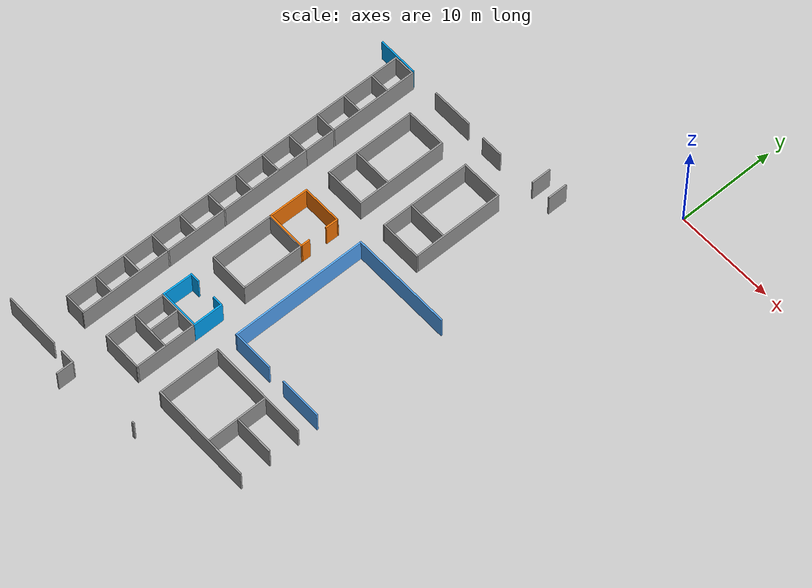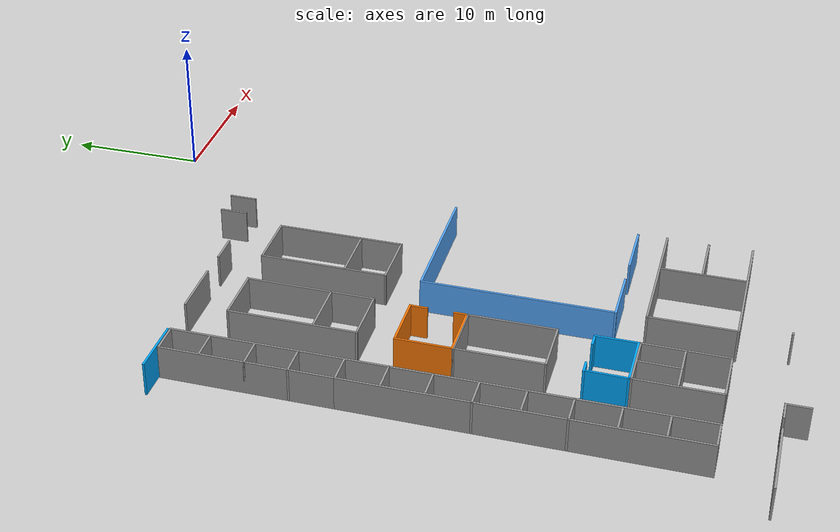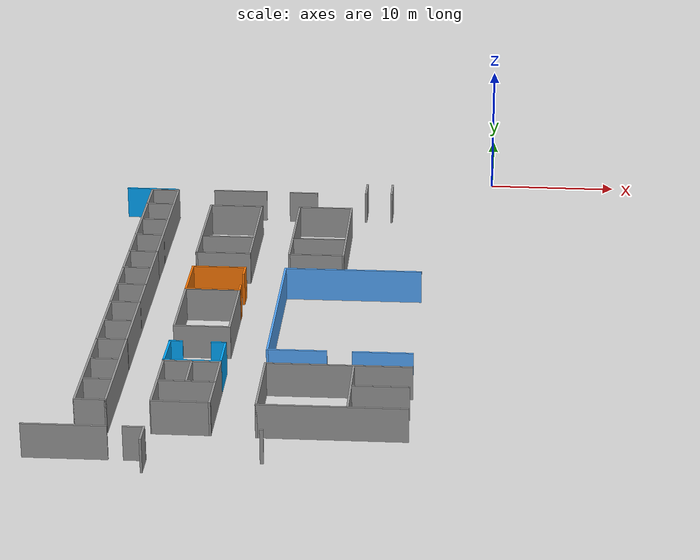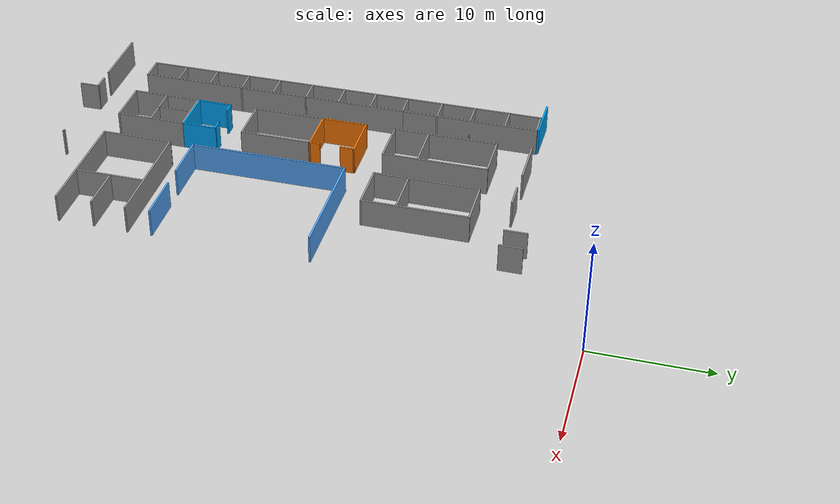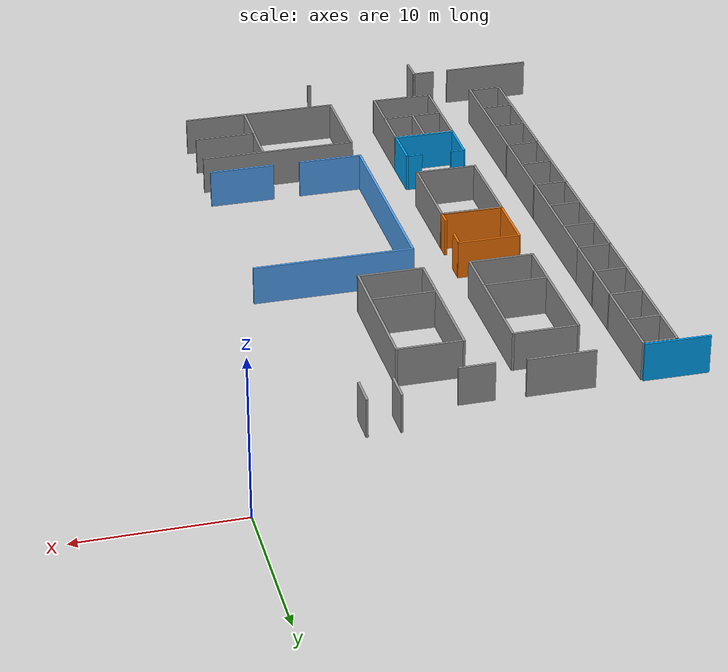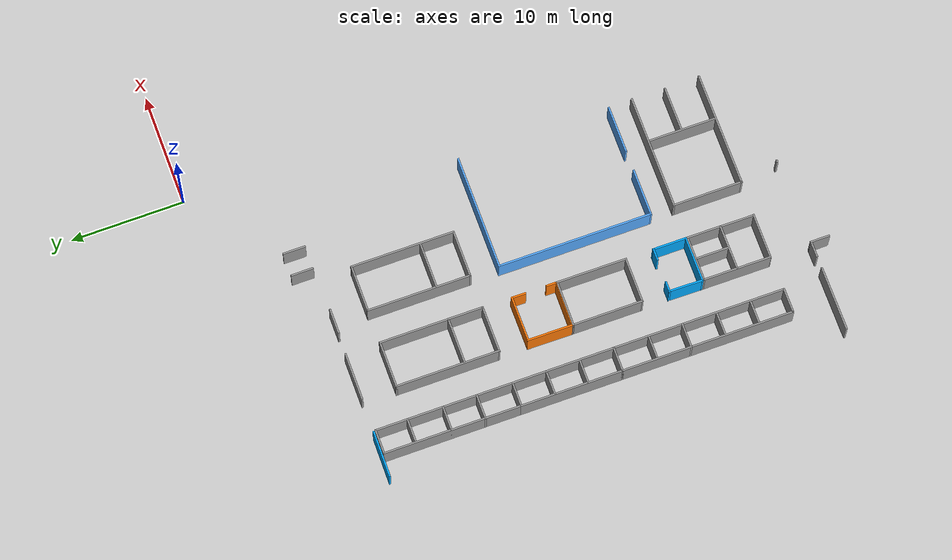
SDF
<sdf version="1.6">
 <model name="rebuilt_1">
  <pose>-2.12726 -2.76078 0 0 -0 0</pose>
  <link name="Wall_237">
   <collision name="Wall_237_Collision">
    <geometry><box><size>10.25 0.15 2.5</size></box></geometry>
    <pose>0 0 1.25 0 -0 0</pose>
   </collision>
   <visual name="Wall_237_Visual">
    <pose>0 0 1.25 0 -0 0</pose>
    <geometry><box><size>10.25 0.15 2.5</size></box></geometry>
    <material>
     <script><uri>file://media/materials/scripts/gazebo.material</uri><name>Gazebo/Grey</name></script>
     <ambient>1 1 1 1</ambient>
    </material>
    <meta><layer>0</layer></meta>
   </visual>
   <pose>-7.87552 -35.9179 0 0 -0 0</pose>
  </link>
  <link name="Wall_239">
   <collision name="Wall_239_Collision">
    <geometry><box><size>10.25 0.15 2.5</size></box></geometry>
    <pose>0 0 1.25 0 -0 0</pose>
   </collision>
   <visual name="Wall_239_Visual">
    <pose>0 0 1.25 0 -0 0</pose>
    <geometry><box><size>10.25 0.15 2.5</size></box></geometry>
    <material>
     <script><uri>file://media/materials/scripts/gazebo.material</uri><name>Gazebo/Grey</name></script>
     <ambient>1 1 1 1</ambient>
    </material>
    <meta><layer>0</layer></meta>
   </visual>
   <pose>-7.87552 -42.0179 0 0 -0 3.14159</pose>
  </link>
  <link name="Wall_240">
   <collision name="Wall_240_Collision">
    <geometry><box><size>6.25 0.15 2.5</size></box></geometry>
    <pose>0 0 1.25 0 -0 0</pose>
   </collision>
   <visual name="Wall_240_Visual">
    <pose>0 0 1.25 0 -0 0</pose>
    <geometry><box><size>6.25 0.15 2.5</size></box></geometry>
    <material>
     <script><uri>file://media/materials/scripts/gazebo.material</uri><name>Gazebo/Grey</name></script>
     <ambient>1 1 1 1</ambient>
    </material>
    <meta><layer>0</layer></meta>
   </visual>
   <pose>-12.9255 -38.9679 0 0 -0 1.5708</pose>
  </link>
  <link name="Wall_242">
   <collision name="Wall_242_Collision">
    <geometry><box><size>6 0.15 2.5</size></box></geometry>
    <pose>0 0 1.25 0 -0 0</pose>
   </collision>
   <visual name="Wall_242_Visual">
    <pose>0 0 1.25 0 -0 0</pose>
    <geometry><box><size>6 0.15 2.5</size></box></geometry>
    <material>
     <script><uri>file://media/materials/scripts/gazebo.material</uri><name>Gazebo/Grey</name></script>
     <ambient>1 1 1 1</ambient>
    </material>
    <meta><layer>0</layer></meta>
   </visual>
   <pose>-6.83581 -38.9909 0 0 -0 1.5708</pose>
  </link>
  <link name="Wall_244">
   <collision name="Wall_244_Collision">
    <geometry><box><size>4 0.15 2.5</size></box></geometry>
    <pose>0 0 1.25 0 -0 0</pose>
   </collision>
   <visual name="Wall_244_Visual">
    <pose>0 0 1.25 0 -0 0</pose>
    <geometry><box><size>4 0.15 2.5</size></box></geometry>
    <material>
     <script><uri>file://media/materials/scripts/gazebo.material</uri><name>Gazebo/Grey</name></script>
     <ambient>1 1 1 1</ambient>
    </material>
    <meta><layer>0</layer></meta>
   </visual>
   <pose>-4.82557 -38.9099 0 0 -0 0</pose>
  </link>
  <link name="Wall_246">
   <collision name="Wall_246_Collision">
    <geometry><box><size>4.09635 0.15 2.5</size></box></geometry>
    <pose>0 0 1.25 0 -0 0</pose>
   </collision>
   <visual name="Wall_246_Visual">
    <pose>0 0 1.25 0 -0 0</pose>
    <geometry><box><size>4.09635 0.15 2.5</size></box></geometry>
    <material>
     <script><uri>file://media/materials/scripts/gazebo.material</uri><name>Gazebo/Grey</name></script>
     <ambient>1 1 1 1</ambient>
    </material>
    <meta><layer>0</layer></meta>
   </visual>
   <pose>-17.996 -35.9529 0 0 0 -0.003894</pose>
  </link>
  <link name="Wall_247">
   <collision name="Wall_247_Collision">
    <geometry><box><size>6.09229 0.15 2.5</size></box></geometry>
    <pose>0 0 1.25 0 -0 0</pose>
   </collision>
   <visual name="Wall_247_Visual">
    <pose>0 0 1.25 0 -0 0</pose>
    <geometry><box><size>6.09229 0.15 2.5</size></box></geometry>
    <material>
     <script><uri>file://media/materials/scripts/gazebo.material</uri><name>Gazebo/Grey</name></script>
     <ambient>1 1 1 1</ambient>
    </material>
    <meta><layer>0</layer></meta>
   </visual>
   <pose>-16.0382 -38.947 0 0 0 -1.57597</pose>
  </link>
  <link name="Wall_248">
   <collision name="Wall_248_Collision">
    <geometry><box><size>4.09635 0.15 2.5</size></box></geometry>
    <pose>0 0 1.25 0 -0 0</pose>
   </collision>
   <visual name="Wall_248_Visual">
    <pose>0 0 1.25 0 -0 0</pose>
    <geometry><box><size>4.09635 0.15 2.5</size></box></geometry>
    <material>
     <script><uri>file://media/materials/scripts/gazebo.material</uri><name>Gazebo/Grey</name></script>
     <ambient>1 1 1 1</ambient>
    </material>
    <meta><layer>0</layer></meta>
   </visual>
   <pose>-18.0113 -41.9104 0 0 -0 3.1377</pose>
  </link>
  <link name="Wall_249">
   <collision name="Wall_249_Collision">
    <geometry><box><size>6.09223 0.15 2.5</size></box></geometry>
    <pose>0 0 1.25 0 -0 0</pose>
   </collision>
   <visual name="Wall_249_Visual">
    <pose>0 0 1.25 0 -0 0</pose>
    <geometry><box><size>6.09223 0.15 2.5</size></box></geometry>
    <material>
     <script><uri>file://media/materials/scripts/gazebo.material</uri><name>Gazebo/Grey</name></script>
     <ambient>1 1 1 1</ambient>
    </material>
    <meta><layer>0</layer></meta>
   </visual>
   <pose>-19.9768 -38.9316 0 0 -0 1.56821</pose>
  </link>
  <link name="Wall_251">
   <collision name="Wall_251_Collision">
    <geometry><box><size>4 0.15 2.5</size></box></geometry>
    <pose>0 0 1.25 0 -0 0</pose>
   </collision>
   <visual name="Wall_251_Visual">
    <pose>0 0 1.25 0 -0 0</pose>
    <geometry><box><size>4 0.15 2.5</size></box></geometry>
    <material>
     <script><uri>file://media/materials/scripts/gazebo.material</uri><name>Gazebo/Grey</name></script>
     <ambient>1 1 1 1</ambient>
    </material>
    <meta><layer>0</layer></meta>
   </visual>
   <pose>-18.0083 -38.9208 0 0 -0 0</pose>
  </link>
  <link name="Wall_253">
   <collision name="Wall_253_Collision">
    <geometry><box><size>3 0.15 2.5</size></box></geometry>
    <pose>0 0 1.25 0 -0 0</pose>
   </collision>
   <visual name="Wall_253_Visual">
    <pose>0 0 1.25 0 -0 0</pose>
    <geometry><box><size>3 0.15 2.5</size></box></geometry>
    <material>
     <script><uri>file://media/materials/scripts/gazebo.material</uri><name>Gazebo/Grey</name></script>
     <ambient>1 1 1 1</ambient>
    </material>
    <meta><layer>0</layer></meta>
   </visual>
   <pose>-18.0122 -37.4727 0 0 -0 1.5708</pose>
  </link>
  <link name="Wall_255">
   <collision name="Wall_255_Collision">
    <geometry><box><size>1 0.15 2.5</size></box></geometry>
    <pose>0 0 1.25 0 -0 0</pose>
   </collision>
   <visual name="Wall_255_Visual">
    <pose>0 0 1.25 0 -0 0</pose>
    <geometry><box><size>1 0.15 2.5</size></box></geometry>
    <material>
     <script><uri>file://media/materials/scripts/gazebo.material</uri><name>Gazebo/Grey</name></script>
     <ambient>0 0.666667 1 1</ambient>
    </material>
    <meta><layer>0</layer></meta>
   </visual>
   <pose>-19.5284 -32.8733 0 0 -0 3.14159</pose>
  </link>
  <link name="Wall_256">
   <collision name="Wall_256_Collision">
    <geometry><box><size>3.08454 0.15 2.5</size></box></geometry>
    <pose>0 0 1.25 0 -0 0</pose>
   </collision>
   <visual name="Wall_256_Visual">
    <pose>0 0 1.25 0 -0 0</pose>
    <geometry><box><size>3.08454 0.15 2.5</size></box></geometry>
    <material>
     <script><uri>file://media/materials/scripts/gazebo.material</uri><name>Gazebo/Grey</name></script>
     <ambient>0 0.666667 1 1</ambient>
    </material>
    <meta><layer>0</layer></meta>
   </visual>
   <pose>-19.9534 -34.3406 0 0 0 -1.58651</pose>
  </link>
  <link name="Wall_257">
   <collision name="Wall_257_Collision">
    <geometry><box><size>4.10403 0.15 2.5</size></box></geometry>
    <pose>0 0 1.25 0 -0 0</pose>
   </collision>
   <visual name="Wall_257_Visual">
    <pose>0 0 1.25 0 -0 0</pose>
    <geometry><box><size>4.10403 0.15 2.5</size></box></geometry>
    <material>
     <script><uri>file://media/materials/scripts/gazebo.material</uri><name>Gazebo/Grey</name></script>
     <ambient>0 0.666667 1 1</ambient>
    </material>
    <meta><layer>0</layer></meta>
   </visual>
   <pose>-18.0071 -35.8156 0 0 0 -0.003887</pose>
  </link>
  <link name="Wall_258">
   <collision name="Wall_258_Collision">
    <geometry><box><size>3.05379 0.15 2.5</size></box></geometry>
    <pose>0 0 1.25 0 -0 0</pose>
   </collision>
   <visual name="Wall_258_Visual">
    <pose>0 0 1.25 0 -0 0</pose>
    <geometry><box><size>3.05379 0.15 2.5</size></box></geometry>
    <material>
     <script><uri>file://media/materials/scripts/gazebo.material</uri><name>Gazebo/Grey</name></script>
     <ambient>0 0.666667 1 1</ambient>
    </material>
    <meta><layer>0</layer></meta>
   </visual>
   <pose>-16.0225 -34.3637 0 0 -0 1.5708</pose>
  </link>
  <link name="Wall_259">
   <collision name="Wall_259_Collision">
    <geometry><box><size>1.08866 0.15 2.5</size></box></geometry>
    <pose>0 0 1.25 0 -0 0</pose>
   </collision>
   <visual name="Wall_259_Visual">
    <pose>0 0 1.25 0 -0 0</pose>
    <geometry><box><size>1.08866 0.15 2.5</size></box></geometry>
    <material>
     <script><uri>file://media/materials/scripts/gazebo.material</uri><name>Gazebo/Grey</name></script>
     <ambient>0 0.666667 1 1</ambient>
    </material>
    <meta><layer>0</layer></meta>
   </visual>
   <pose>-16.4995 -32.9156 0 0 -0 3.13341</pose>
  </link>
  <link name="Wall_261">
   <collision name="Wall_261_Collision">
    <geometry><box><size>4.25 0.15 2.5</size></box></geometry>
    <pose>0 0 1.25 0 -0 0</pose>
   </collision>
   <visual name="Wall_261_Visual">
    <pose>0 0 1.25 0 -0 0</pose>
    <geometry><box><size>4.25 0.15 2.5</size></box></geometry>
    <material>
     <script><uri>file://media/materials/scripts/gazebo.material</uri><name>Gazebo/Grey</name></script>
     <ambient>0.333333 0.666667 1 1</ambient>
    </material>
    <meta><layer>0</layer></meta>
   </visual>
   <pose>-10.952 -33.8154 0 0 -0 3.14159</pose>
  </link>
  <link name="Wall_262">
   <collision name="Wall_262_Collision">
    <geometry><box><size>13.75 0.15 2.5</size></box></geometry>
    <pose>0 0 1.25 0 -0 0</pose>
   </collision>
   <visual name="Wall_262_Visual">
    <pose>0 0 1.25 0 -0 0</pose>
    <geometry><box><size>13.75 0.15 2.5</size></box></geometry>
    <material>
     <script><uri>file://media/materials/scripts/gazebo.material</uri><name>Gazebo/Grey</name></script>
     <ambient>0.333333 0.666667 1 1</ambient>
    </material>
    <meta><layer>0</layer></meta>
   </visual>
   <pose>-13.002 -27.0155 0 0 -0 1.5708</pose>
  </link>
  <link name="Wall_263">
   <collision name="Wall_263_Collision">
    <geometry><box><size>10.25 0.15 2.5</size></box></geometry>
    <pose>0 0 1.25 0 -0 0</pose>
   </collision>
   <visual name="Wall_263_Visual">
    <pose>0 0 1.25 0 -0 0</pose>
    <geometry><box><size>10.25 0.15 2.5</size></box></geometry>
    <material>
     <script><uri>file://media/materials/scripts/gazebo.material</uri><name>Gazebo/Grey</name></script>
     <ambient>0.333333 0.666667 1 1</ambient>
    </material>
    <meta><layer>0</layer></meta>
   </visual>
   <pose>-7.95196 -20.2155 0 0 -0 0</pose>
  </link>
  <link name="Wall_265">
   <collision name="Wall_265_Collision">
    <geometry><box><size>4.25 0.15 2.5</size></box></geometry>
    <pose>0 0 1.25 0 -0 0</pose>
   </collision>
   <visual name="Wall_265_Visual">
    <pose>0 0 1.25 0 -0 0</pose>
    <geometry><box><size>4.25 0.15 2.5</size></box></geometry>
    <material>
     <script><uri>file://media/materials/scripts/gazebo.material</uri><name>Gazebo/Grey</name></script>
     <ambient>0.333333 0.666667 1 1</ambient>
    </material>
    <meta><layer>0</layer></meta>
   </visual>
   <pose>-4.95196 -33.8154 0 0 -0 3.14159</pose>
  </link>
  <link name="Wall_317">
   <collision name="Wall_317_Collision">
    <geometry><box><size>9.25 0.15 2.5</size></box></geometry>
    <pose>0 0 1.25 0 -0 0</pose>
   </collision>
   <visual name="Wall_317_Visual">
    <pose>0 0 1.25 0 -0 0</pose>
    <geometry><box><size>9.25 0.15 2.5</size></box></geometry>
    <material>
     <script><uri>file://media/materials/scripts/gazebo.material</uri><name>Gazebo/Grey</name></script>
     <ambient>1 1 1 1</ambient>
    </material>
    <meta><layer>0</layer></meta>
   </visual>
   <pose>-12.9651 -13.0796 0 0 -0 1.5708</pose>
  </link>
  <link name="Wall_318">
   <collision name="Wall_318_Collision">
    <geometry><box><size>4.25 0.15 2.5</size></box></geometry>
    <pose>0 0 1.25 0 -0 0</pose>
   </collision>
   <visual name="Wall_318_Visual">
    <pose>0 0 1.25 0 -0 0</pose>
    <geometry><box><size>4.25 0.15 2.5</size></box></geometry>
    <material>
     <script><uri>file://media/materials/scripts/gazebo.material</uri><name>Gazebo/Grey</name></script>
     <ambient>1 1 1 1</ambient>
    </material>
    <meta><layer>0</layer></meta>
   </visual>
   <pose>-10.9151 -8.52962 0 0 -0 0</pose>
  </link>
  <link name="Wall_319">
   <collision name="Wall_319_Collision">
    <geometry><box><size>9.25 0.15 2.5</size></box></geometry>
    <pose>0 0 1.25 0 -0 0</pose>
   </collision>
   <visual name="Wall_319_Visual">
    <pose>0 0 1.25 0 -0 0</pose>
    <geometry><box><size>9.25 0.15 2.5</size></box></geometry>
    <material>
     <script><uri>file://media/materials/scripts/gazebo.material</uri><name>Gazebo/Grey</name></script>
     <ambient>1 1 1 1</ambient>
    </material>
    <meta><layer>0</layer></meta>
   </visual>
   <pose>-8.8651 -13.0796 0 0 0 -1.5708</pose>
  </link>
  <link name="Wall_320">
   <collision name="Wall_320_Collision">
    <geometry><box><size>4.25 0.15 2.5</size></box></geometry>
    <pose>0 0 1.25 0 -0 0</pose>
   </collision>
   <visual name="Wall_320_Visual">
    <pose>0 0 1.25 0 -0 0</pose>
    <geometry><box><size>4.25 0.15 2.5</size></box></geometry>
    <material>
     <script><uri>file://media/materials/scripts/gazebo.material</uri><name>Gazebo/Grey</name></script>
     <ambient>1 1 1 1</ambient>
    </material>
    <meta><layer>0</layer></meta>
   </visual>
   <pose>-10.9151 -17.6296 0 0 -0 3.14159</pose>
  </link>
  <link name="Wall_322">
   <collision name="Wall_322_Collision">
    <geometry><box><size>4 0.15 2.5</size></box></geometry>
    <pose>0 0 1.25 0 -0 0</pose>
   </collision>
   <visual name="Wall_322_Visual">
    <pose>0 0 1.25 0 -0 0</pose>
    <geometry><box><size>4 0.15 2.5</size></box></geometry>
    <material>
     <script><uri>file://media/materials/scripts/gazebo.material</uri><name>Gazebo/Grey</name></script>
     <ambient>1 1 1 1</ambient>
    </material>
    <meta><layer>0</layer></meta>
   </visual>
   <pose>-10.9432 -14.6437 0 0 -0 0</pose>
  </link>
  <link name="Wall_327">
   <collision name="Wall_327_Collision">
    <geometry><box><size>4.17244 0.15 2.5</size></box></geometry>
    <pose>0 0 1.25 0 -0 0</pose>
   </collision>
   <visual name="Wall_327_Visual">
    <pose>0 0 1.25 0 -0 0</pose>
    <geometry><box><size>4.17244 0.15 2.5</size></box></geometry>
    <material>
     <script><uri>file://media/materials/scripts/gazebo.material</uri><name>Gazebo/Grey</name></script>
     <ambient>1 1 1 1</ambient>
    </material>
    <meta><layer>0</layer></meta>
   </visual>
   <pose>-17.9921 -8.55553 0 0 -0 0</pose>
  </link>
  <link name="Wall_328">
   <collision name="Wall_328_Collision">
    <geometry><box><size>9.25 0.15 2.5</size></box></geometry>
    <pose>0 0 1.25 0 -0 0</pose>
   </collision>
   <visual name="Wall_328_Visual">
    <pose>0 0 1.25 0 -0 0</pose>
    <geometry><box><size>9.25 0.15 2.5</size></box></geometry>
    <material>
     <script><uri>file://media/materials/scripts/gazebo.material</uri><name>Gazebo/Grey</name></script>
     <ambient>1 1 1 1</ambient>
    </material>
    <meta><layer>0</layer></meta>
   </visual>
   <pose>-15.9615 -13.1055 0 0 0 -1.5708</pose>
  </link>
  <link name="Wall_329">
   <collision name="Wall_329_Collision">
    <geometry><box><size>4.17244 0.15 2.5</size></box></geometry>
    <pose>0 0 1.25 0 -0 0</pose>
   </collision>
   <visual name="Wall_329_Visual">
    <pose>0 0 1.25 0 -0 0</pose>
    <geometry><box><size>4.17244 0.15 2.5</size></box></geometry>
    <material>
     <script><uri>file://media/materials/scripts/gazebo.material</uri><name>Gazebo/Grey</name></script>
     <ambient>1 1 1 1</ambient>
    </material>
    <meta><layer>0</layer></meta>
   </visual>
   <pose>-17.9921 -17.6555 0 0 -0 3.14159</pose>
  </link>
  <link name="Wall_330">
   <collision name="Wall_330_Collision">
    <geometry><box><size>9.25 0.15 2.5</size></box></geometry>
    <pose>0 0 1.25 0 -0 0</pose>
   </collision>
   <visual name="Wall_330_Visual">
    <pose>0 0 1.25 0 -0 0</pose>
    <geometry><box><size>9.25 0.15 2.5</size></box></geometry>
    <material>
     <script><uri>file://media/materials/scripts/gazebo.material</uri><name>Gazebo/Grey</name></script>
     <ambient>1 1 1 1</ambient>
    </material>
    <meta><layer>0</layer></meta>
   </visual>
   <pose>-20.0033 -13.1055 0 0 -0 1.5708</pose>
  </link>
  <link name="Wall_331">
   <collision name="Wall_331_Collision">
    <geometry><box><size>0.15 0.15 2.5</size></box></geometry>
    <pose>0 0 1.25 0 -0 0</pose>
   </collision>
   <visual name="Wall_331_Visual">
    <pose>0 0 1.25 0 -0 0</pose>
    <geometry><box><size>0.15 0.15 2.5</size></box></geometry>
    <material>
     <script><uri>file://media/materials/scripts/gazebo.material</uri><name>Gazebo/Grey</name></script>
     <ambient>0 0 0 0</ambient>
    </material>
    <meta><layer>0</layer></meta>
   </visual>
   <pose>-20.0033 -8.55553 0 0 -0 0</pose>
  </link>
  <link name="Wall_332">
   <collision name="Wall_332_Collision">
    <geometry><box><size>4 0.15 2.5</size></box></geometry>
    <pose>0 0 1.25 0 -0 0</pose>
   </collision>
   <visual name="Wall_332_Visual">
    <pose>0 0 1.25 0 -0 0</pose>
    <geometry><box><size>4 0.15 2.5</size></box></geometry>
    <material>
     <script><uri>file://media/materials/scripts/gazebo.material</uri><name>Gazebo/Grey</name></script>
     <ambient>1 1 1 1</ambient>
    </material>
    <meta><layer>0</layer></meta>
   </visual>
   <pose>-17.9814 -14.6049 0 0 -0 0</pose>
  </link>
  <link name="Wall_341">
   <collision name="Wall_341_Collision">
    <geometry><box><size>4.25 0.15 2.5</size></box></geometry>
    <pose>0 0 1.25 0 -0 0</pose>
   </collision>
   <visual name="Wall_341_Visual">
    <pose>0 0 1.25 0 -0 0</pose>
    <geometry><box><size>4.25 0.15 2.5</size></box></geometry>
    <material>
     <script><uri>file://media/materials/scripts/gazebo.material</uri><name>Gazebo/Grey</name></script>
     <ambient>1 1 1 1</ambient>
    </material>
    <meta><layer>0</layer></meta>
   </visual>
   <pose>-17.9933 -5.5093 0 0 -0 3.14159</pose>
  </link>
  <link name="Wall_382">
   <collision name="Wall_382_Collision">
    <geometry><box><size>2.25 0.15 2.5</size></box></geometry>
    <pose>0 0 1.25 0 -0 0</pose>
   </collision>
   <visual name="Wall_382_Visual">
    <pose>0 0 1.25 0 -0 0</pose>
    <geometry><box><size>2.25 0.15 2.5</size></box></geometry>
    <material>
     <script><uri>file://media/materials/scripts/gazebo.material</uri><name>Gazebo/Grey</name></script>
     <ambient>1 1 1 1</ambient>
    </material>
    <meta><layer>0</layer></meta>
   </visual>
   <pose>-12.8966 -5.58956 0 0 -0 3.14159</pose>
  </link>
  <link name="Wall_446">
   <collision name="Wall_446_Collision">
    <geometry><box><size>4.1184 0.15 2.5</size></box></geometry>
    <pose>0 0 1.25 0 -0 0</pose>
   </collision>
   <visual name="Wall_446_Visual">
    <pose>0 0 1.25 0 -0 0</pose>
    <geometry><box><size>4.1184 0.15 2.5</size></box></geometry>
    <material>
     <script><uri>file://media/materials/scripts/gazebo.material</uri><name>Gazebo/Grey</name></script>
     <ambient>0 0.666667 1 1</ambient>
    </material>
    <meta><layer>0</layer></meta>
   </visual>
   <pose>-25.0931 -5.45796 0 0 -0 3.13296</pose>
  </link>
  <link name="Wall_456">
   <collision name="Wall_456_Collision">
    <geometry><box><size>1 0.15 2.5</size></box></geometry>
    <pose>0 0 1.25 0 -0 0</pose>
   </collision>
   <visual name="Wall_456_Visual">
    <pose>0 0 1.25 0 -0 0</pose>
    <geometry><box><size>1 0.15 2.5</size></box></geometry>
    <material>
     <script><uri>file://media/materials/scripts/gazebo.material</uri><name>Gazebo/Grey</name></script>
     <ambient>0.996078 0.47451 0.0196078 1</ambient>
    </material>
    <meta><layer>0</layer></meta>
   </visual>
   <pose>-16.0142 -23.792 0 0 0 -1.5708</pose>
  </link>
  <link name="Wall_457">
   <collision name="Wall_457_Collision">
    <geometry><box><size>4.1069 0.15 2.5</size></box></geometry>
    <pose>0 0 1.25 0 -0 0</pose>
   </collision>
   <visual name="Wall_457_Visual">
    <pose>0 0 1.25 0 -0 0</pose>
    <geometry><box><size>4.1069 0.15 2.5</size></box></geometry>
    <material>
     <script><uri>file://media/materials/scripts/gazebo.material</uri><name>Gazebo/Grey</name></script>
     <ambient>0.996078 0.47451 0.0196078 1</ambient>
    </material>
    <meta><layer>0</layer></meta>
   </visual>
   <pose>-17.9925 -24.1968 0 0 -0 3.13014</pose>
  </link>
  <link name="Wall_458">
   <collision name="Wall_458_Collision">
    <geometry><box><size>4.05438 0.15 2.5</size></box></geometry>
    <pose>0 0 1.25 0 -0 0</pose>
   </collision>
   <visual name="Wall_458_Visual">
    <pose>0 0 1.25 0 -0 0</pose>
    <geometry><box><size>4.05438 0.15 2.5</size></box></geometry>
    <material>
     <script><uri>file://media/materials/scripts/gazebo.material</uri><name>Gazebo/Grey</name></script>
     <ambient>0.996078 0.47451 0.0196078 1</ambient>
    </material>
    <meta><layer>0</layer></meta>
   </visual>
   <pose>-19.9586 -22.2126 0 0 -0 1.56452</pose>
  </link>
  <link name="Wall_459">
   <collision name="Wall_459_Collision">
    <geometry><box><size>4.08803 0.15 2.5</size></box></geometry>
    <pose>0 0 1.25 0 -0 0</pose>
   </collision>
   <visual name="Wall_459_Visual">
    <pose>0 0 1.25 0 -0 0</pose>
    <geometry><box><size>4.08803 0.15 2.5</size></box></geometry>
    <material>
     <script><uri>file://media/materials/scripts/gazebo.material</uri><name>Gazebo/Grey</name></script>
     <ambient>0.996078 0.47451 0.0196078 1</ambient>
    </material>
    <meta><layer>0</layer></meta>
   </visual>
   <pose>-17.9749 -20.2567 0 0 -0 0.001904</pose>
  </link>
  <link name="Wall_460">
   <collision name="Wall_460_Collision">
    <geometry><box><size>1.31374 0.15 2.5</size></box></geometry>
    <pose>0 0 1.25 0 -0 0</pose>
   </collision>
   <visual name="Wall_460_Visual">
    <pose>0 0 1.25 0 -0 0</pose>
    <geometry><box><size>1.31374 0.15 2.5</size></box></geometry>
    <material>
     <script><uri>file://media/materials/scripts/gazebo.material</uri><name>Gazebo/Grey</name></script>
     <ambient>0.996078 0.47451 0.0196078 1</ambient>
    </material>
    <meta><layer>0</layer></meta>
   </visual>
   <pose>-16.0115 -20.8404 0 0 0 -1.58056</pose>
  </link>
  <link name="Wall_466">
   <collision name="Wall_466_Collision">
    <geometry><box><size>4.10603 0.15 2.5</size></box></geometry>
    <pose>0 0 1.25 0 -0 0</pose>
   </collision>
   <visual name="Wall_466_Visual">
    <pose>0 0 1.25 0 -0 0</pose>
    <geometry><box><size>4.10603 0.15 2.5</size></box></geometry>
    <material>
     <script><uri>file://media/materials/scripts/gazebo.material</uri><name>Gazebo/Grey</name></script>
     <ambient>1 1 1 1</ambient>
    </material>
    <meta><layer>0</layer></meta>
   </visual>
   <pose>-17.9937 -24.2781 0 0 0 -0.005729</pose>
  </link>
  <link name="Wall_467">
   <collision name="Wall_467_Collision">
    <geometry><box><size>6.28024 0.15 2.5</size></box></geometry>
    <pose>0 0 1.25 0 -0 0</pose>
   </collision>
   <visual name="Wall_467_Visual">
    <pose>0 0 1.25 0 -0 0</pose>
    <geometry><box><size>6.28024 0.15 2.5</size></box></geometry>
    <material>
     <script><uri>file://media/materials/scripts/gazebo.material</uri><name>Gazebo/Grey</name></script>
     <ambient>1 1 1 1</ambient>
    </material>
    <meta><layer>0</layer></meta>
   </visual>
   <pose>-16.0234 -27.3469 0 0 0 -1.57326</pose>
  </link>
  <link name="Wall_468">
   <collision name="Wall_468_Collision">
    <geometry><box><size>4.08322 0.15 2.5</size></box></geometry>
    <pose>0 0 1.25 0 -0 0</pose>
   </collision>
   <visual name="Wall_468_Visual">
    <pose>0 0 1.25 0 -0 0</pose>
    <geometry><box><size>4.08322 0.15 2.5</size></box></geometry>
    <material>
     <script><uri>file://media/materials/scripts/gazebo.material</uri><name>Gazebo/Grey</name></script>
     <ambient>1 1 1 1</ambient>
    </material>
    <meta><layer>0</layer></meta>
   </visual>
   <pose>-18.0051 -30.4158 0 0 -0 3.13967</pose>
  </link>
  <link name="Wall_469">
   <collision name="Wall_469_Collision">
    <geometry><box><size>6.28777 0.15 2.5</size></box></geometry>
    <pose>0 0 1.25 0 -0 0</pose>
   </collision>
   <visual name="Wall_469_Visual">
    <pose>0 0 1.25 0 -0 0</pose>
    <geometry><box><size>6.28777 0.15 2.5</size></box></geometry>
    <material>
     <script><uri>file://media/materials/scripts/gazebo.material</uri><name>Gazebo/Grey</name></script>
     <ambient>1 1 1 1</ambient>
    </material>
    <meta><layer>0</layer></meta>
   </visual>
   <pose>-19.9716 -27.3281 0 0 -0 1.5708</pose>
  </link>
  <link name="Wall_475">
   <collision name="Wall_475_Collision">
    <geometry><box><size>9.25 0.15 2.5</size></box></geometry>
    <pose>0 0 1.25 0 -0 0</pose>
   </collision>
   <visual name="Wall_475_Visual">
    <pose>0 0 1.25 0 -0 0</pose>
    <geometry><box><size>9.25 0.15 2.5</size></box></geometry>
    <material>
     <script><uri>file://media/materials/scripts/gazebo.material</uri><name>Gazebo/Grey</name></script>
     <ambient>1 1 1 1</ambient>
    </material>
    <meta><layer>0</layer></meta>
   </visual>
   <pose>-25.1123 -37.4028 0 0 0 -1.5708</pose>
  </link>
  <link name="Wall_476">
   <collision name="Wall_476_Collision">
    <geometry><box><size>2.25 0.15 2.5</size></box></geometry>
    <pose>0 0 1.25 0 -0 0</pose>
   </collision>
   <visual name="Wall_476_Visual">
    <pose>0 0 1.25 0 -0 0</pose>
    <geometry><box><size>2.25 0.15 2.5</size></box></geometry>
    <material>
     <script><uri>file://media/materials/scripts/gazebo.material</uri><name>Gazebo/Grey</name></script>
     <ambient>1 1 1 1</ambient>
    </material>
    <meta><layer>0</layer></meta>
   </visual>
   <pose>-24.0623 -41.9528 0 0 -0 0</pose>
  </link>
  <link name="Wall_477">
   <collision name="Wall_477_Collision">
    <geometry><box><size>9.25 0.15 2.5</size></box></geometry>
    <pose>0 0 1.25 0 -0 0</pose>
   </collision>
   <visual name="Wall_477_Visual">
    <pose>0 0 1.25 0 -0 0</pose>
    <geometry><box><size>9.25 0.15 2.5</size></box></geometry>
    <material>
     <script><uri>file://media/materials/scripts/gazebo.material</uri><name>Gazebo/Grey</name></script>
     <ambient>1 1 1 1</ambient>
    </material>
    <meta><layer>0</layer></meta>
   </visual>
   <pose>-23.0123 -37.4028 0 0 -0 1.5708</pose>
  </link>
  <link name="Wall_479">
   <collision name="Wall_479_Collision">
    <geometry><box><size>15.25 0.15 2.5</size></box></geometry>
    <pose>0 0 1.25 0 -0 0</pose>
   </collision>
   <visual name="Wall_479_Visual">
    <pose>0 0 1.25 0 -0 0</pose>
    <geometry><box><size>15.25 0.15 2.5</size></box></geometry>
    <material>
     <script><uri>file://media/materials/scripts/gazebo.material</uri><name>Gazebo/Grey</name></script>
     <ambient>1 1 1 1</ambient>
    </material>
    <meta><layer>0</layer></meta>
   </visual>
   <pose>-25.1123 -25.3028 0 0 -0 1.5708</pose>
  </link>
  <link name="Wall_480">
   <collision name="Wall_480_Collision">
    <geometry><box><size>2.25 0.15 2.5</size></box></geometry>
    <pose>0 0 1.25 0 -0 0</pose>
   </collision>
   <visual name="Wall_480_Visual">
    <pose>0 0 1.25 0 -0 0</pose>
    <geometry><box><size>2.25 0.15 2.5</size></box></geometry>
    <material>
     <script><uri>file://media/materials/scripts/gazebo.material</uri><name>Gazebo/Grey</name></script>
     <ambient>1 1 1 1</ambient>
    </material>
    <meta><layer>0</layer></meta>
   </visual>
   <pose>-24.0623 -17.7528 0 0 -0 0</pose>
  </link>
  <link name="Wall_481">
   <collision name="Wall_481_Collision">
    <geometry><box><size>15.25 0.15 2.5</size></box></geometry>
    <pose>0 0 1.25 0 -0 0</pose>
   </collision>
   <visual name="Wall_481_Visual">
    <pose>0 0 1.25 0 -0 0</pose>
    <geometry><box><size>15.25 0.15 2.5</size></box></geometry>
    <material>
     <script><uri>file://media/materials/scripts/gazebo.material</uri><name>Gazebo/Grey</name></script>
     <ambient>1 1 1 1</ambient>
    </material>
    <meta><layer>0</layer></meta>
   </visual>
   <pose>-23.0123 -25.3028 0 0 0 -1.5708</pose>
  </link>
  <link name="Wall_483">
   <collision name="Wall_483_Collision">
    <geometry><box><size>12.25 0.15 2.5</size></box></geometry>
    <pose>0 0 1.25 0 -0 0</pose>
   </collision>
   <visual name="Wall_483_Visual">
    <pose>0 0 1.25 0 -0 0</pose>
    <geometry><box><size>12.25 0.15 2.5</size></box></geometry>
    <material>
     <script><uri>file://media/materials/scripts/gazebo.material</uri><name>Gazebo/Grey</name></script>
     <ambient>1 1 1 1</ambient>
    </material>
    <meta><layer>0</layer></meta>
   </visual>
   <pose>-25.1123 -11.7028 0 0 -0 1.5708</pose>
  </link>
  <link name="Wall_484">
   <collision name="Wall_484_Collision">
    <geometry><box><size>2.25 0.15 2.5</size></box></geometry>
    <pose>0 0 1.25 0 -0 0</pose>
   </collision>
   <visual name="Wall_484_Visual">
    <pose>0 0 1.25 0 -0 0</pose>
    <geometry><box><size>2.25 0.15 2.5</size></box></geometry>
    <material>
     <script><uri>file://media/materials/scripts/gazebo.material</uri><name>Gazebo/Grey</name></script>
     <ambient>1 1 1 1</ambient>
    </material>
    <meta><layer>0</layer></meta>
   </visual>
   <pose>-24.0623 -5.65279 0 0 -0 0</pose>
  </link>
  <link name="Wall_485">
   <collision name="Wall_485_Collision">
    <geometry><box><size>12.25 0.15 2.5</size></box></geometry>
    <pose>0 0 1.25 0 -0 0</pose>
   </collision>
   <visual name="Wall_485_Visual">
    <pose>0 0 1.25 0 -0 0</pose>
    <geometry><box><size>12.25 0.15 2.5</size></box></geometry>
    <material>
     <script><uri>file://media/materials/scripts/gazebo.material</uri><name>Gazebo/Grey</name></script>
     <ambient>1 1 1 1</ambient>
    </material>
    <meta><layer>0</layer></meta>
   </visual>
   <pose>-23.0123 -11.7028 0 0 0 -1.5708</pose>
  </link>
  <link name="Wall_487">
   <collision name="Wall_487_Collision">
    <geometry><box><size>2.25 0.15 2.5</size></box></geometry>
    <pose>0 0 1.25 0 -0 0</pose>
   </collision>
   <visual name="Wall_487_Visual">
    <pose>0 0 1.25 0 -0 0</pose>
    <geometry><box><size>2.25 0.15 2.5</size></box></geometry>
    <material>
     <script><uri>file://media/materials/scripts/gazebo.material</uri><name>Gazebo/Grey</name></script>
     <ambient>1 1 1 1</ambient>
    </material>
    <meta><layer>0</layer></meta>
   </visual>
   <pose>-24.0623 -8.4641 0 0 -0 0</pose>
  </link>
  <link name="Wall_489">
   <collision name="Wall_489_Collision">
    <geometry><box><size>2.25 0.15 2.5</size></box></geometry>
    <pose>0 0 1.25 0 -0 0</pose>
   </collision>
   <visual name="Wall_489_Visual">
    <pose>0 0 1.25 0 -0 0</pose>
    <geometry><box><size>2.25 0.15 2.5</size></box></geometry>
    <material>
     <script><uri>file://media/materials/scripts/gazebo.material</uri><name>Gazebo/Grey</name></script>
     <ambient>1 1 1 1</ambient>
    </material>
    <meta><layer>0</layer></meta>
   </visual>
   <pose>-24.0623 -11.5977 0 0 -0 0</pose>
  </link>
  <link name="Wall_492">
   <collision name="Wall_492_Collision">
    <geometry><box><size>2.25 0.15 2.5</size></box></geometry>
    <pose>0 0 1.25 0 -0 0</pose>
   </collision>
   <visual name="Wall_492_Visual">
    <pose>0 0 1.25 0 -0 0</pose>
    <geometry><box><size>2.25 0.15 2.5</size></box></geometry>
    <material>
     <script><uri>file://media/materials/scripts/gazebo.material</uri><name>Gazebo/Grey</name></script>
     <ambient>1 1 1 1</ambient>
    </material>
    <meta><layer>0</layer></meta>
   </visual>
   <pose>-24.0623 -14.5834 0 0 -0 0</pose>
  </link>
  <link name="Wall_494">
   <collision name="Wall_494_Collision">
    <geometry><box><size>2.25 0.15 2.5</size></box></geometry>
    <pose>0 0 1.25 0 -0 0</pose>
   </collision>
   <visual name="Wall_494_Visual">
    <pose>0 0 1.25 0 -0 0</pose>
    <geometry><box><size>2.25 0.15 2.5</size></box></geometry>
    <material>
     <script><uri>file://media/materials/scripts/gazebo.material</uri><name>Gazebo/Grey</name></script>
     <ambient>1 1 1 1</ambient>
    </material>
    <meta><layer>0</layer></meta>
   </visual>
   <pose>-24.0623 -20.7324 0 0 -0 0</pose>
  </link>
  <link name="Wall_496">
   <collision name="Wall_496_Collision">
    <geometry><box><size>2.25 0.15 2.5</size></box></geometry>
    <pose>0 0 1.25 0 -0 0</pose>
   </collision>
   <visual name="Wall_496_Visual">
    <pose>0 0 1.25 0 -0 0</pose>
    <geometry><box><size>2.25 0.15 2.5</size></box></geometry>
    <material>
     <script><uri>file://media/materials/scripts/gazebo.material</uri><name>Gazebo/Grey</name></script>
     <ambient>1 1 1 1</ambient>
    </material>
    <meta><layer>0</layer></meta>
   </visual>
   <pose>-24.0623 -23.6886 0 0 -0 0</pose>
  </link>
  <link name="Wall_498">
   <collision name="Wall_498_Collision">
    <geometry><box><size>2.25 0.15 2.5</size></box></geometry>
    <pose>0 0 1.25 0 -0 0</pose>
   </collision>
   <visual name="Wall_498_Visual">
    <pose>0 0 1.25 0 -0 0</pose>
    <geometry><box><size>2.25 0.15 2.5</size></box></geometry>
    <material>
     <script><uri>file://media/materials/scripts/gazebo.material</uri><name>Gazebo/Grey</name></script>
     <ambient>1 1 1 1</ambient>
    </material>
    <meta><layer>0</layer></meta>
   </visual>
   <pose>-24.0623 -26.7334 0 0 -0 0</pose>
  </link>
  <link name="Wall_500">
   <collision name="Wall_500_Collision">
    <geometry><box><size>2 0.15 2.5</size></box></geometry>
    <pose>0 0 1.25 0 -0 0</pose>
   </collision>
   <visual name="Wall_500_Visual">
    <pose>0 0 1.25 0 -0 0</pose>
    <geometry><box><size>2 0.15 2.5</size></box></geometry>
    <material>
     <script><uri>file://media/materials/scripts/gazebo.material</uri><name>Gazebo/Grey</name></script>
     <ambient>1 1 1 1</ambient>
    </material>
    <meta><layer>0</layer></meta>
   </visual>
   <pose>-24.0508 -29.8375 0 0 -0 0</pose>
  </link>
  <link name="Wall_502">
   <collision name="Wall_502_Collision">
    <geometry><box><size>2.25 0.15 2.5</size></box></geometry>
    <pose>0 0 1.25 0 -0 0</pose>
   </collision>
   <visual name="Wall_502_Visual">
    <pose>0 0 1.25 0 -0 0</pose>
    <geometry><box><size>2.25 0.15 2.5</size></box></geometry>
    <material>
     <script><uri>file://media/materials/scripts/gazebo.material</uri><name>Gazebo/Grey</name></script>
     <ambient>1 1 1 1</ambient>
    </material>
    <meta><layer>0</layer></meta>
   </visual>
   <pose>-24.0623 -32.8528 0 0 -0 0</pose>
  </link>
  <link name="Wall_504">
   <collision name="Wall_504_Collision">
    <geometry><box><size>2 0.15 2.5</size></box></geometry>
    <pose>0 0 1.25 0 -0 0</pose>
   </collision>
   <visual name="Wall_504_Visual">
    <pose>0 0 1.25 0 -0 0</pose>
    <geometry><box><size>2 0.15 2.5</size></box></geometry>
    <material>
     <script><uri>file://media/materials/scripts/gazebo.material</uri><name>Gazebo/Grey</name></script>
     <ambient>1 1 1 1</ambient>
    </material>
    <meta><layer>0</layer></meta>
   </visual>
   <pose>-24.0613 -35.907 0 0 -0 0</pose>
  </link>
  <link name="Wall_506">
   <collision name="Wall_506_Collision">
    <geometry><box><size>2 0.15 2.5</size></box></geometry>
    <pose>0 0 1.25 0 -0 0</pose>
   </collision>
   <visual name="Wall_506_Visual">
    <pose>0 0 1.25 0 -0 0</pose>
    <geometry><box><size>2 0.15 2.5</size></box></geometry>
    <material>
     <script><uri>file://media/materials/scripts/gazebo.material</uri><name>Gazebo/Grey</name></script>
     <ambient>1 1 1 1</ambient>
    </material>
    <meta><layer>0</layer></meta>
   </visual>
   <pose>-24.0632 -38.9329 0 0 -0 0</pose>
  </link>
  <link name="Wall_576">
   <collision name="Wall_576_Collision">
    <geometry><box><size>0.25 0.15 2.5</size></box></geometry>
    <pose>0 0 1.25 0 -0 0</pose>
   </collision>
   <visual name="Wall_576_Visual">
    <pose>0 0 1.25 0 -0 0</pose>
    <geometry><box><size>0.25 0.15 2.5</size></box></geometry>
    <material>
     <script><uri>file://media/materials/scripts/gazebo.material</uri><name>Gazebo/Grey</name></script>
     <ambient>1 1 1 1</ambient>
    </material>
    <meta><layer>0</layer></meta>
   </visual>
   <pose>-12.2023 -45.5152 0 0 -0 3.14159</pose>
  </link>
  <link name="Wall_578">
   <collision name="Wall_578_Collision">
    <geometry><box><size>1.75 0.15 2.5</size></box></geometry>
    <pose>0 0 1.25 0 -0 0</pose>
   </collision>
   <visual name="Wall_578_Visual">
    <pose>0 0 1.25 0 -0 0</pose>
    <geometry><box><size>1.75 0.15 2.5</size></box></geometry>
    <material>
     <script><uri>file://media/materials/scripts/gazebo.material</uri><name>Gazebo/Grey</name></script>
     <ambient>1 1 1 1</ambient>
    </material>
    <meta><layer>0</layer></meta>
   </visual>
   <pose>-19.8965 -46.4076 0 0 -0 1.5708</pose>
  </link>
  <link name="Wall_579">
   <collision name="Wall_579_Collision">
    <geometry><box><size>1.5 0.15 2.5</size></box></geometry>
    <pose>0 0 1.25 0 -0 0</pose>
   </collision>
   <visual name="Wall_579_Visual">
    <pose>0 0 1.25 0 -0 0</pose>
    <geometry><box><size>1.5 0.15 2.5</size></box></geometry>
    <material>
     <script><uri>file://media/materials/scripts/gazebo.material</uri><name>Gazebo/Grey</name></script>
     <ambient>1 1 1 1</ambient>
    </material>
    <meta><layer>0</layer></meta>
   </visual>
   <pose>-20.5715 -45.6076 0 0 -0 3.14159</pose>
  </link>
  <link name="Wall_581">
   <collision name="Wall_581_Collision">
    <geometry><box><size>5.75 0.15 2.5</size></box></geometry>
    <pose>0 0 1.25 0 -0 0</pose>
   </collision>
   <visual name="Wall_581_Visual">
    <pose>0 0 1.25 0 -0 0</pose>
    <geometry><box><size>5.75 0.15 2.5</size></box></geometry>
    <material>
     <script><uri>file://media/materials/scripts/gazebo.material</uri><name>Gazebo/Grey</name></script>
     <ambient>1 1 1 1</ambient>
    </material>
    <meta><layer>0</layer></meta>
   </visual>
   <pose>-25.1935 -45.6169 0 0 -0 3.14159</pose>
  </link>
  <link name="Wall_644">
   <collision name="Wall_644_Collision">
    <geometry><box><size>2 0.15 2.5</size></box></geometry>
    <pose>0 0 1.25 0 -0 0</pose>
   </collision>
   <visual name="Wall_644_Visual">
    <pose>0 0 1.25 0 -0 0</pose>
    <geometry><box><size>2 0.15 2.5</size></box></geometry>
    <material>
     <script><uri>file://media/materials/scripts/gazebo.material</uri><name>Gazebo/Grey</name></script>
     <ambient>1 1 1 1</ambient>
    </material>
    <meta><layer>0</layer></meta>
   </visual>
   <pose>-7.89668 -4.48783 0 0 0 -1.5708</pose>
  </link>
  <link name="Wall_646">
   <collision name="Wall_646_Collision">
    <geometry><box><size>2 0.15 2.5</size></box></geometry>
    <pose>0 0 1.25 0 -0 0</pose>
   </collision>
   <visual name="Wall_646_Visual">
    <pose>0 0 1.25 0 -0 0</pose>
    <geometry><box><size>2 0.15 2.5</size></box></geometry>
    <material>
     <script><uri>file://media/materials/scripts/gazebo.material</uri><name>Gazebo/Grey</name></script>
     <ambient>1 1 1 1</ambient>
    </material>
    <meta><layer>0</layer></meta>
   </visual>
   <pose>-5.8568 -4.48783 0 0 0 -1.5708</pose>
  </link>
  <static>1</static>
 </model>
</sdf>
